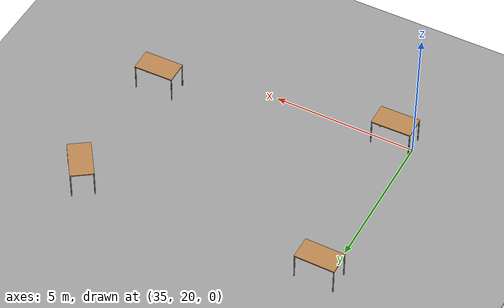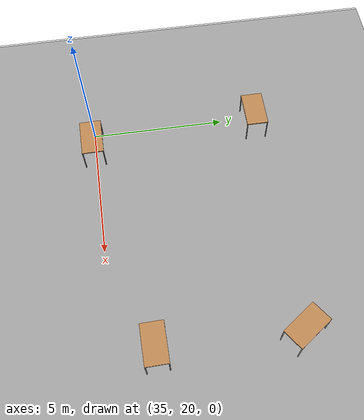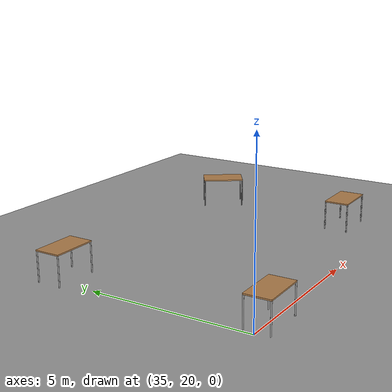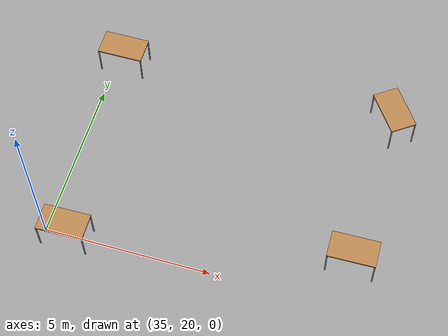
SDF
<sdf version="1.6">
 <world name="default">
  <model name="ground_plane">
   <static>1</static>
   <link name="link">
    <collision name="collision">
     <geometry><plane><normal>0 0 1</normal><size>100 100</size></plane></geometry>
     <surface><friction><ode><mu>100</mu><mu2>50</mu2></ode></friction></surface>
    </collision>
    <visual name="visual">
     <cast_shadows>0</cast_shadows>
     <geometry><plane><normal>0 0 1</normal><size>100 100</size></plane></geometry>
     <material>
      <script><uri>file://media/materials/scripts/gazebo.material</uri><name>Gazebo/Grey</name></script>
     </material>
    </visual>
   </link>
  </model>
  <model name="ground_plane_0">
   <static>1</static>
   <link name="link">
    <collision name="collision">
     <geometry><plane><normal>0 0 1</normal><size>100 100</size></plane></geometry>
     <surface><friction><ode><mu>100</mu><mu2>50</mu2></ode></friction></surface>
    </collision>
    <visual name="visual">
     <cast_shadows>0</cast_shadows>
     <geometry><plane><normal>0 0 1</normal><size>100 100</size></plane></geometry>
     <material>
      <script><uri>file://media/materials/scripts/gazebo.material</uri><name>Gazebo/Grey</name></script>
     </material>
    </visual>
   </link>
   <pose>79.7365 -0.376659 0 0 -0 0</pose>
  </model>
  <model name="table_clone_clone_clone">
   <static>0</static>
   <link name="link">
    <collision name="surface">
     <pose>0 0 1 0 -0 0</pose>
     <geometry><box><size>1.5 0.8 0.03</size></box></geometry>
     <surface><friction><ode><mu>0.6</mu><mu2>0.6</mu2></ode></friction></surface>
    </collision>
    <visual name="visual1">
     <pose>0 0 1 0 -0 0</pose>
     <geometry><box><size>1.4 0.8 0.04</size></box></geometry>
     <material>
      <script><uri>file://media/materials/scripts/gazebo.material</uri><name>Gazebo/Wood</name></script>
     </material>
    </visual>
    <collision name="front_left_leg">
     <pose>0.68 0.38 0.5 0 -0 0</pose>
     <geometry><cylinder><radius>0.02</radius><length>1</length></cylinder></geometry>
    </collision>
    <visual name="front_left_leg">
     <pose>0.68 0.38 0.5 0 -0 0</pose>
     <geometry><cylinder><radius>0.02</radius><length>1</length></cylinder></geometry>
     <material>
      <script><uri>file://media/materials/scripts/gazebo.material</uri><name>Gazebo/Grey</name></script>
     </material>
    </visual>
    <collision name="front_right_leg">
     <pose>0.68 -0.38 0.5 0 -0 0</pose>
     <geometry><cylinder><radius>0.02</radius><length>1</length></cylinder></geometry>
    </collision>
    <visual name="front_right_leg">
     <pose>0.68 -0.38 0.5 0 -0 0</pose>
     <geometry><cylinder><radius>0.02</radius><length>1</length></cylinder></geometry>
     <material>
      <script><uri>file://media/materials/scripts/gazebo.material</uri><name>Gazebo/Grey</name></script>
     </material>
    </visual>
    <collision name="back_right_leg">
     <pose>-0.68 -0.38 0.5 0 -0 0</pose>
     <geometry><cylinder><radius>0.02</radius><length>1</length></cylinder></geometry>
    </collision>
    <visual name="back_right_leg">
     <pose>-0.68 -0.38 0.5 0 -0 0</pose>
     <geometry><cylinder><radius>0.02</radius><length>1</length></cylinder></geometry>
     <material>
      <script><uri>file://media/materials/scripts/gazebo.material</uri><name>Gazebo/Grey</name></script>
     </material>
    </visual>
    <collision name="back_left_leg">
     <pose>-0.68 0.38 0.5 0 -0 0</pose>
     <geometry><cylinder><radius>0.02</radius><length>1</length></cylinder></geometry>
    </collision>
    <visual name="back_left_leg">
     <pose>-0.68 0.38 0.5 0 -0 0</pose>
     <geometry><cylinder><radius>0.02</radius><length>1</length></cylinder></geometry>
     <material>
      <script><uri>file://media/materials/scripts/gazebo.material</uri><name>Gazebo/Grey</name></script>
     </material>
    </visual>
    <inertial>
     <inertia><ixx>1</ixx><ixy>0</ixy><ixz>0</ixz><iyy>1</iyy><iyz>0</iyz><izz>1</izz></inertia>
     <mass>1</mass>
    </inertial>
   </link>
   <pose>35.3011 26.2449 -7e-06 2e-06 -3e-06 0</pose>
  </model>
  <model name="table_clone_clone_clone_0">
   <static>0</static>
   <link name="link">
    <collision name="surface">
     <pose>0 0 1 0 -0 0</pose>
     <geometry><box><size>1.5 0.8 0.03</size></box></geometry>
     <surface><friction><ode><mu>0.6</mu><mu2>0.6</mu2></ode></friction></surface>
    </collision>
    <visual name="visual1">
     <pose>0 0 1 0 -0 0</pose>
     <geometry><box><size>1.4 0.8 0.04</size></box></geometry>
     <material>
      <script><uri>file://media/materials/scripts/gazebo.material</uri><name>Gazebo/Wood</name></script>
     </material>
    </visual>
    <collision name="front_left_leg">
     <pose>0.68 0.38 0.5 0 -0 0</pose>
     <geometry><cylinder><radius>0.02</radius><length>1</length></cylinder></geometry>
    </collision>
    <visual name="front_left_leg">
     <pose>0.68 0.38 0.5 0 -0 0</pose>
     <geometry><cylinder><radius>0.02</radius><length>1</length></cylinder></geometry>
     <material>
      <script><uri>file://media/materials/scripts/gazebo.material</uri><name>Gazebo/Grey</name></script>
     </material>
    </visual>
    <collision name="front_right_leg">
     <pose>0.68 -0.38 0.5 0 -0 0</pose>
     <geometry><cylinder><radius>0.02</radius><length>1</length></cylinder></geometry>
    </collision>
    <visual name="front_right_leg">
     <pose>0.68 -0.38 0.5 0 -0 0</pose>
     <geometry><cylinder><radius>0.02</radius><length>1</length></cylinder></geometry>
     <material>
      <script><uri>file://media/materials/scripts/gazebo.material</uri><name>Gazebo/Grey</name></script>
     </material>
    </visual>
    <collision name="back_right_leg">
     <pose>-0.68 -0.38 0.5 0 -0 0</pose>
     <geometry><cylinder><radius>0.02</radius><length>1</length></cylinder></geometry>
    </collision>
    <visual name="back_right_leg">
     <pose>-0.68 -0.38 0.5 0 -0 0</pose>
     <geometry><cylinder><radius>0.02</radius><length>1</length></cylinder></geometry>
     <material>
      <script><uri>file://media/materials/scripts/gazebo.material</uri><name>Gazebo/Grey</name></script>
     </material>
    </visual>
    <collision name="back_left_leg">
     <pose>-0.68 0.38 0.5 0 -0 0</pose>
     <geometry><cylinder><radius>0.02</radius><length>1</length></cylinder></geometry>
    </collision>
    <visual name="back_left_leg">
     <pose>-0.68 0.38 0.5 0 -0 0</pose>
     <geometry><cylinder><radius>0.02</radius><length>1</length></cylinder></geometry>
     <material>
      <script><uri>file://media/materials/scripts/gazebo.material</uri><name>Gazebo/Grey</name></script>
     </material>
    </visual>
    <inertial>
     <inertia><ixx>1</ixx><ixy>0</ixy><ixz>0</ixz><iyy>1</iyy><iyz>0</iyz><izz>1</izz></inertia>
     <mass>1</mass>
    </inertial>
   </link>
   <pose>43.926 26.2785 -8e-06 0 0 -0.956442</pose>
  </model>
  <model name="table_clone_0_clone">
   <static>0</static>
   <link name="link">
    <collision name="surface">
     <pose>0 0 1 0 -0 0</pose>
     <geometry><box><size>1.5 0.8 0.03</size></box></geometry>
     <surface><friction><ode><mu>0.6</mu><mu2>0.6</mu2></ode></friction></surface>
    </collision>
    <visual name="visual1">
     <pose>0 0 1 0 -0 0</pose>
     <geometry><box><size>1.4 0.8 0.04</size></box></geometry>
     <material>
      <script><uri>file://media/materials/scripts/gazebo.material</uri><name>Gazebo/Wood</name></script>
     </material>
    </visual>
    <collision name="front_left_leg">
     <pose>0.68 0.38 0.5 0 -0 0</pose>
     <geometry><cylinder><radius>0.02</radius><length>1</length></cylinder></geometry>
    </collision>
    <visual name="front_left_leg">
     <pose>0.68 0.38 0.5 0 -0 0</pose>
     <geometry><cylinder><radius>0.02</radius><length>1</length></cylinder></geometry>
     <material>
      <script><uri>file://media/materials/scripts/gazebo.material</uri><name>Gazebo/Grey</name></script>
     </material>
    </visual>
    <collision name="front_right_leg">
     <pose>0.68 -0.38 0.5 0 -0 0</pose>
     <geometry><cylinder><radius>0.02</radius><length>1</length></cylinder></geometry>
    </collision>
    <visual name="front_right_leg">
     <pose>0.68 -0.38 0.5 0 -0 0</pose>
     <geometry><cylinder><radius>0.02</radius><length>1</length></cylinder></geometry>
     <material>
      <script><uri>file://media/materials/scripts/gazebo.material</uri><name>Gazebo/Grey</name></script>
     </material>
    </visual>
    <collision name="back_right_leg">
     <pose>-0.68 -0.38 0.5 0 -0 0</pose>
     <geometry><cylinder><radius>0.02</radius><length>1</length></cylinder></geometry>
    </collision>
    <visual name="back_right_leg">
     <pose>-0.68 -0.38 0.5 0 -0 0</pose>
     <geometry><cylinder><radius>0.02</radius><length>1</length></cylinder></geometry>
     <material>
      <script><uri>file://media/materials/scripts/gazebo.material</uri><name>Gazebo/Grey</name></script>
     </material>
    </visual>
    <collision name="back_left_leg">
     <pose>-0.68 0.38 0.5 0 -0 0</pose>
     <geometry><cylinder><radius>0.02</radius><length>1</length></cylinder></geometry>
    </collision>
    <visual name="back_left_leg">
     <pose>-0.68 0.38 0.5 0 -0 0</pose>
     <geometry><cylinder><radius>0.02</radius><length>1</length></cylinder></geometry>
     <material>
      <script><uri>file://media/materials/scripts/gazebo.material</uri><name>Gazebo/Grey</name></script>
     </material>
    </visual>
    <inertial>
     <inertia><ixx>1</ixx><ixy>0</ixy><ixz>0</ixz><iyy>1</iyy><iyz>0</iyz><izz>1</izz></inertia>
     <mass>1</mass>
    </inertial>
   </link>
   <pose>43.7888 21.4061 -2e-06 0 -0 0.01873</pose>
  </model>
  <model name="table_clone_0_clone_0">
   <static>0</static>
   <link name="link">
    <collision name="surface">
     <pose>0 0 1 0 -0 0</pose>
     <geometry><box><size>1.5 0.8 0.03</size></box></geometry>
     <surface><friction><ode><mu>0.6</mu><mu2>0.6</mu2></ode></friction></surface>
    </collision>
    <visual name="visual1">
     <pose>0 0 1 0 -0 0</pose>
     <geometry><box><size>1.4 0.8 0.04</size></box></geometry>
     <material>
      <script><uri>file://media/materials/scripts/gazebo.material</uri><name>Gazebo/Wood</name></script>
     </material>
    </visual>
    <collision name="front_left_leg">
     <pose>0.68 0.38 0.5 0 -0 0</pose>
     <geometry><cylinder><radius>0.02</radius><length>1</length></cylinder></geometry>
    </collision>
    <visual name="front_left_leg">
     <pose>0.68 0.38 0.5 0 -0 0</pose>
     <geometry><cylinder><radius>0.02</radius><length>1</length></cylinder></geometry>
     <material>
      <script><uri>file://media/materials/scripts/gazebo.material</uri><name>Gazebo/Grey</name></script>
     </material>
    </visual>
    <collision name="front_right_leg">
     <pose>0.68 -0.38 0.5 0 -0 0</pose>
     <geometry><cylinder><radius>0.02</radius><length>1</length></cylinder></geometry>
    </collision>
    <visual name="front_right_leg">
     <pose>0.68 -0.38 0.5 0 -0 0</pose>
     <geometry><cylinder><radius>0.02</radius><length>1</length></cylinder></geometry>
     <material>
      <script><uri>file://media/materials/scripts/gazebo.material</uri><name>Gazebo/Grey</name></script>
     </material>
    </visual>
    <collision name="back_right_leg">
     <pose>-0.68 -0.38 0.5 0 -0 0</pose>
     <geometry><cylinder><radius>0.02</radius><length>1</length></cylinder></geometry>
    </collision>
    <visual name="back_right_leg">
     <pose>-0.68 -0.38 0.5 0 -0 0</pose>
     <geometry><cylinder><radius>0.02</radius><length>1</length></cylinder></geometry>
     <material>
      <script><uri>file://media/materials/scripts/gazebo.material</uri><name>Gazebo/Grey</name></script>
     </material>
    </visual>
    <collision name="back_left_leg">
     <pose>-0.68 0.38 0.5 0 -0 0</pose>
     <geometry><cylinder><radius>0.02</radius><length>1</length></cylinder></geometry>
    </collision>
    <visual name="back_left_leg">
     <pose>-0.68 0.38 0.5 0 -0 0</pose>
     <geometry><cylinder><radius>0.02</radius><length>1</length></cylinder></geometry>
     <material>
      <script><uri>file://media/materials/scripts/gazebo.material</uri><name>Gazebo/Grey</name></script>
     </material>
    </visual>
    <inertial>
     <inertia><ixx>1</ixx><ixy>0</ixy><ixz>0</ixz><iyy>1</iyy><iyz>0</iyz><izz>1</izz></inertia>
     <mass>1</mass>
    </inertial>
   </link>
   <pose>35.703 19.9454 -2e-06 0 -0 0.01873</pose>
  </model>
 </world>
</sdf>
